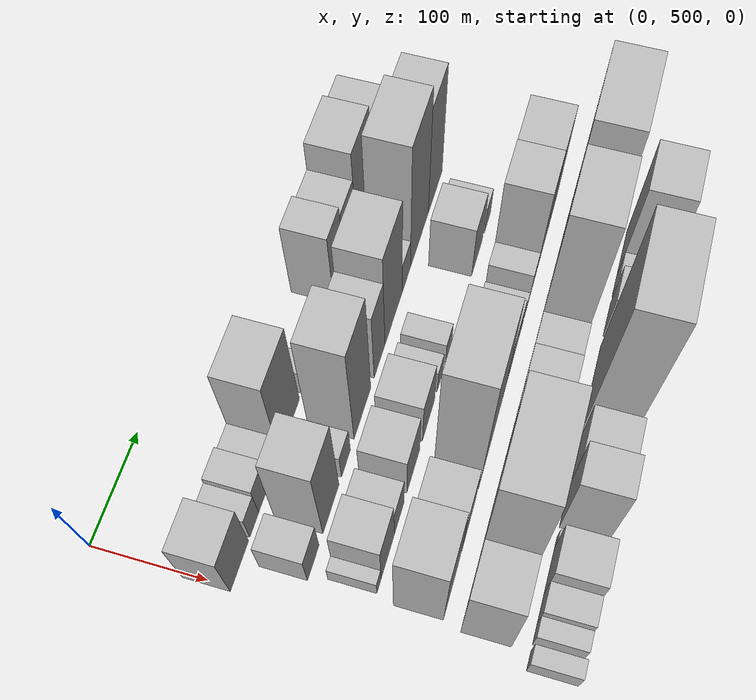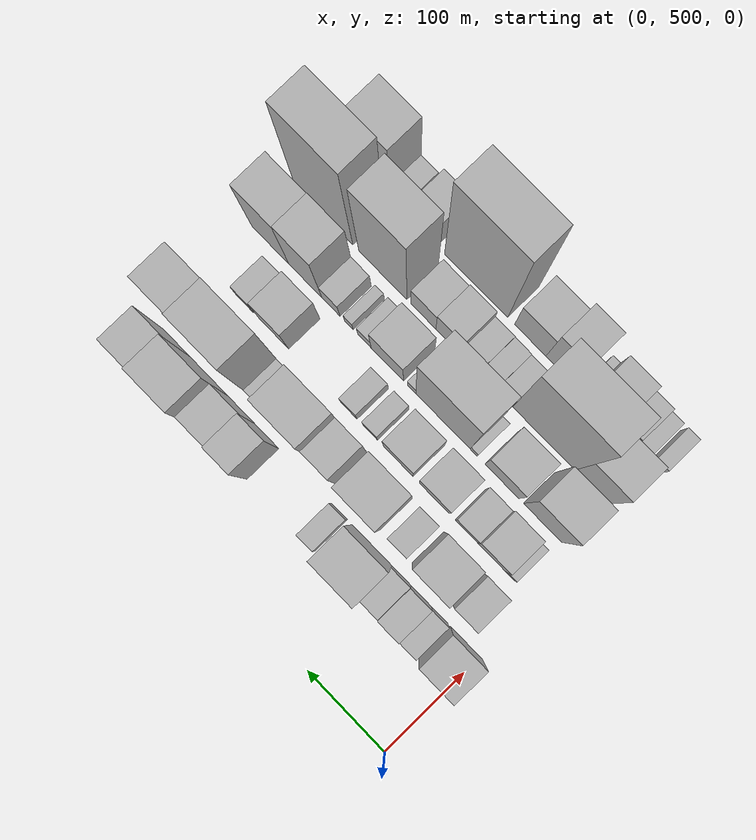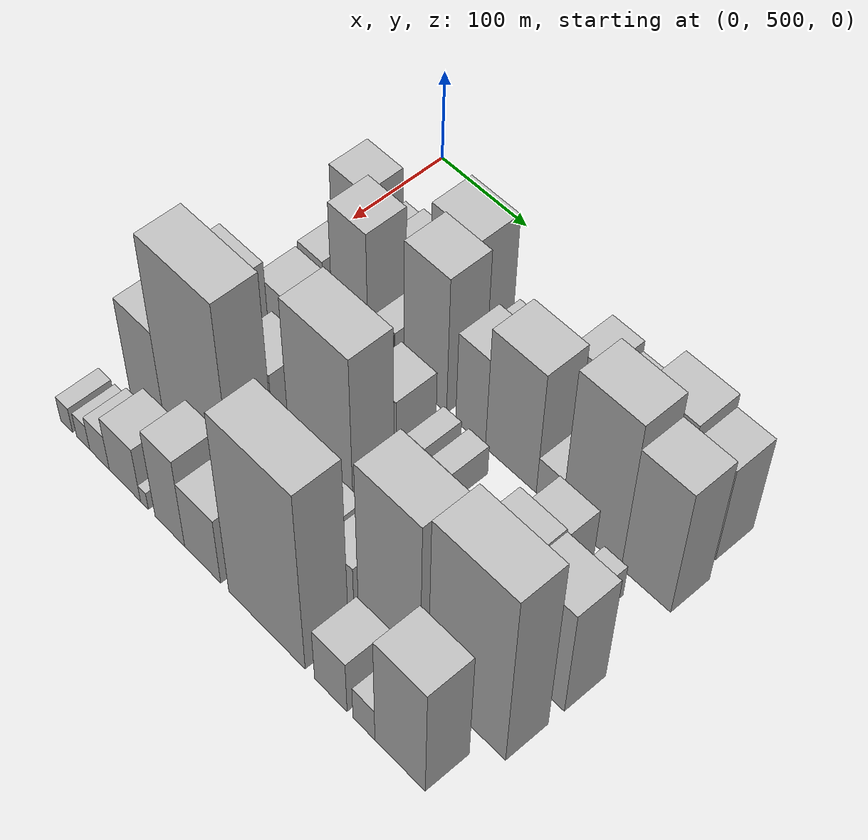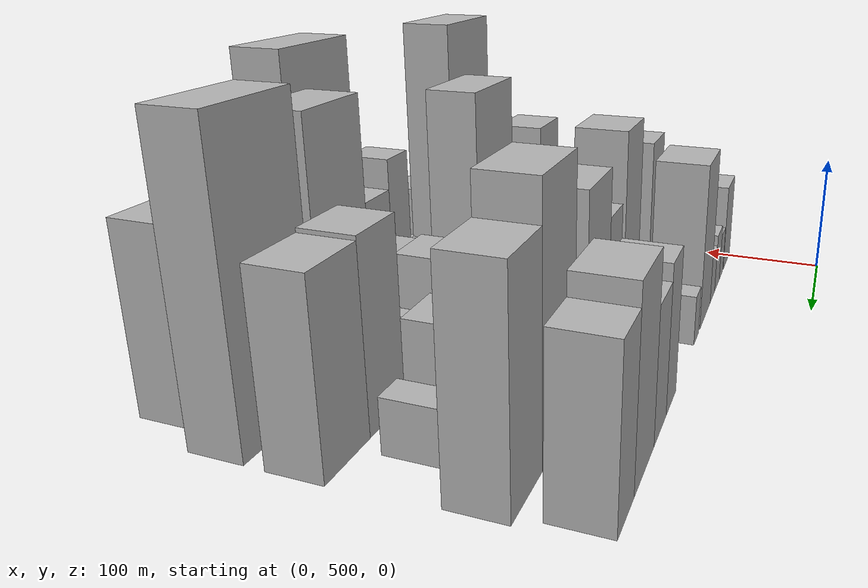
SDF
<sdf version="1.6">
 <world name="default">
  <model name="building_44">
   <static>1</static>
   <pose>100.0000 517.8508 0 0.000000 0.000000 0.000000</pose>
   <link name="link">
    <pose>0 0 39.00 0 0 0</pose>
    <collision name="collision"><geometry><box><size>40.0000 41.9341 78.0000</size></box></geometry></collision>
    <visual name="visual">
     <cast_shadows>0</cast_shadows>
     <geometry><box><size>40.0000 41.9341 78.0000</size></box></geometry>
     <material>
      <script>
       <uri>model://HANNAS_wall/materials/scripts</uri>
       <uri>model://HANNAS_wall/materials/textures</uri>
       <name>vrc/HANNAS_wall</name>
      </script>
     </material>
    </visual>
   </link>
  </model>
  <model name="building_45">
   <static>1</static>
   <pose>100.0000 552.3802 0 0.000000 0.000000 0.000000</pose>
   <link name="link">
    <pose>0 0 21.00 0 0 0</pose>
    <collision name="collision"><geometry><box><size>40.0000 21.1246 42.0000</size></box></geometry></collision>
    <visual name="visual">
     <cast_shadows>0</cast_shadows>
     <geometry><box><size>40.0000 21.1246 42.0000</size></box></geometry>
     <material>
      <script>
       <uri>model://HANNAS_wall/materials/scripts</uri>
       <uri>model://HANNAS_wall/materials/textures</uri>
       <name>vrc/HANNAS_wall</name>
      </script>
     </material>
    </visual>
   </link>
  </model>
  <model name="building_46">
   <static>1</static>
   <pose>100.0000 576.4382 0 0.000000 0.000000 0.000000</pose>
   <link name="link">
    <pose>0 0 25.50 0 0 0</pose>
    <collision name="collision"><geometry><box><size>40.0000 26.9914 51.0000</size></box></geometry></collision>
    <visual name="visual">
     <cast_shadows>0</cast_shadows>
     <geometry><box><size>40.0000 26.9914 51.0000</size></box></geometry>
     <material>
      <script>
       <uri>model://HANNAS_wall/materials/scripts</uri>
       <uri>model://HANNAS_wall/materials/textures</uri>
       <name>vrc/HANNAS_wall</name>
      </script>
     </material>
    </visual>
   </link>
  </model>
  <model name="building_47">
   <static>1</static>
   <pose>100.0000 602.1581 0 0.000000 0.000000 0.000000</pose>
   <link name="link">
    <pose>0 0 21.00 0 0 0</pose>
    <collision name="collision"><geometry><box><size>40.0000 24.4485 42.0000</size></box></geometry></collision>
    <visual name="visual">
     <cast_shadows>0</cast_shadows>
     <geometry><box><size>40.0000 24.4485 42.0000</size></box></geometry>
     <material>
      <script>
       <uri>model://HANNAS_wall/materials/scripts</uri>
       <uri>model://HANNAS_wall/materials/textures</uri>
       <name>vrc/HANNAS_wall</name>
      </script>
     </material>
    </visual>
   </link>
  </model>
  <model name="building_48">
   <static>1</static>
   <pose>100.0000 640.1710 0 0.000000 0.000000 0.000000</pose>
   <link name="link">
    <pose>0 0 66.00 0 0 0</pose>
    <collision name="collision"><geometry><box><size>40.0000 51.5771 132.0000</size></box></geometry></collision>
    <visual name="visual">
     <cast_shadows>0</cast_shadows>
     <geometry><box><size>40.0000 51.5771 132.0000</size></box></geometry>
     <material>
      <script>
       <uri>model://HANNAS_wall/materials/scripts</uri>
       <uri>model://HANNAS_wall/materials/textures</uri>
       <name>vrc/HANNAS_wall</name>
      </script>
     </material>
    </visual>
   </link>
  </model>
  <model name="building_49">
   <static>1</static>
   <pose>100.0000 682.2339 0 0.000000 0.000000 0.000000</pose>
   <link name="link">
    <pose>0 0 19.50 0 0 0</pose>
    <collision name="collision"><geometry><box><size>40.0000 20.5488 39.0000</size></box></geometry></collision>
    <visual name="visual">
     <cast_shadows>0</cast_shadows>
     <geometry><box><size>40.0000 20.5488 39.0000</size></box></geometry>
     <material>
      <script>
       <uri>model://HANNAS_wall/materials/scripts</uri>
       <uri>model://HANNAS_wall/materials/textures</uri>
       <name>vrc/HANNAS_wall</name>
      </script>
     </material>
    </visual>
   </link>
  </model>
  <model name="building_50">
   <static>1</static>
   <pose>100.0000 778.3598 0 0.000000 0.000000 0.000000</pose>
   <link name="link">
    <pose>0 0 52.50 0 0 0</pose>
    <collision name="collision"><geometry><box><size>40.0000 31.9010 105.0000</size></box></geometry></collision>
    <visual name="visual">
     <cast_shadows>0</cast_shadows>
     <geometry><box><size>40.0000 31.9010 105.0000</size></box></geometry>
     <material>
      <script>
       <uri>model://HANNAS_wall/materials/scripts</uri>
       <uri>model://HANNAS_wall/materials/textures</uri>
       <name>vrc/HANNAS_wall</name>
      </script>
     </material>
    </visual>
   </link>
  </model>
  <model name="building_51">
   <static>1</static>
   <pose>100.0000 812.2921 0 0.000000 0.000000 0.000000</pose>
   <link name="link">
    <pose>0 0 46.50 0 0 0</pose>
    <collision name="collision"><geometry><box><size>40.0000 35.9637 93.0000</size></box></geometry></collision>
    <visual name="visual">
     <cast_shadows>0</cast_shadows>
     <geometry><box><size>40.0000 35.9637 93.0000</size></box></geometry>
     <material>
      <script>
       <uri>model://HANNAS_wall/materials/scripts</uri>
       <uri>model://HANNAS_wall/materials/textures</uri>
       <name>vrc/HANNAS_wall</name>
      </script>
     </material>
    </visual>
   </link>
  </model>
  <model name="building_52">
   <static>1</static>
   <pose>100.0000 855.3692 0 0.000000 0.000000 0.000000</pose>
   <link name="link">
    <pose>0 0 64.50 0 0 0</pose>
    <collision name="collision"><geometry><box><size>40.0000 50.1904 129.0000</size></box></geometry></collision>
    <visual name="visual">
     <cast_shadows>0</cast_shadows>
     <geometry><box><size>40.0000 50.1904 129.0000</size></box></geometry>
     <material>
      <script>
       <uri>model://HANNAS_wall/materials/scripts</uri>
       <uri>model://HANNAS_wall/materials/textures</uri>
       <name>vrc/HANNAS_wall</name>
      </script>
     </material>
    </visual>
   </link>
  </model>
  <model name="building_53">
   <static>1</static>
   <pose>100.0000 898.5017 0 0.000000 0.000000 0.000000</pose>
   <link name="link">
    <pose>0 0 57.00 0 0 0</pose>
    <collision name="collision"><geometry><box><size>40.0000 36.0745 114.0000</size></box></geometry></collision>
    <visual name="visual">
     <cast_shadows>0</cast_shadows>
     <geometry><box><size>40.0000 36.0745 114.0000</size></box></geometry>
     <material>
      <script>
       <uri>model://HANNAS_wall/materials/scripts</uri>
       <uri>model://HANNAS_wall/materials/textures</uri>
       <name>vrc/HANNAS_wall</name>
      </script>
     </material>
    </visual>
   </link>
  </model>
  <model name="building_96">
   <static>1</static>
   <pose>155.0000 536.3667 0 0.000000 0.000000 0.000000</pose>
   <link name="link">
    <pose>0 0 25.50 0 0 0</pose>
    <collision name="collision"><geometry><box><size>40.0000 29.1340 51.0000</size></box></geometry></collision>
    <visual name="visual">
     <cast_shadows>0</cast_shadows>
     <geometry><box><size>40.0000 29.1340 51.0000</size></box></geometry>
     <material>
      <script>
       <uri>model://HANNAS_wall/materials/scripts</uri>
       <uri>model://HANNAS_wall/materials/textures</uri>
       <name>vrc/HANNAS_wall</name>
      </script>
     </material>
    </visual>
   </link>
  </model>
  <model name="building_97">
   <static>1</static>
   <pose>155.0000 582.0551 0 0.000000 0.000000 0.000000</pose>
   <link name="link">
    <pose>0 0 64.50 0 0 0</pose>
    <collision name="collision"><geometry><box><size>40.0000 42.2427 129.0000</size></box></geometry></collision>
    <visual name="visual">
     <cast_shadows>0</cast_shadows>
     <geometry><box><size>40.0000 42.2427 129.0000</size></box></geometry>
     <material>
      <script>
       <uri>model://HANNAS_wall/materials/scripts</uri>
       <uri>model://HANNAS_wall/materials/textures</uri>
       <name>vrc/HANNAS_wall</name>
      </script>
     </material>
    </visual>
   </link>
  </model>
  <model name="building_98">
   <static>1</static>
   <pose>155.0000 622.3955 0 0.000000 0.000000 0.000000</pose>
   <link name="link">
    <pose>0 0 21.00 0 0 0</pose>
    <collision name="collision"><geometry><box><size>40.0000 24.4379 42.0000</size></box></geometry></collision>
    <visual name="visual">
     <cast_shadows>0</cast_shadows>
     <geometry><box><size>40.0000 24.4379 42.0000</size></box></geometry>
     <material>
      <script>
       <uri>model://HANNAS_wall/materials/scripts</uri>
       <uri>model://HANNAS_wall/materials/textures</uri>
       <name>vrc/HANNAS_wall</name>
      </script>
     </material>
    </visual>
   </link>
  </model>
  <model name="building_99">
   <static>1</static>
   <pose>155.0000 668.6088 0 0.000000 0.000000 0.000000</pose>
   <link name="link">
    <pose>0 0 79.50 0 0 0</pose>
    <collision name="collision"><geometry><box><size>40.0000 47.9887 159.0000</size></box></geometry></collision>
    <visual name="visual">
     <cast_shadows>0</cast_shadows>
     <geometry><box><size>40.0000 47.9887 159.0000</size></box></geometry>
     <material>
      <script>
       <uri>model://HANNAS_wall/materials/scripts</uri>
       <uri>model://HANNAS_wall/materials/textures</uri>
       <name>vrc/HANNAS_wall</name>
      </script>
     </material>
    </visual>
   </link>
  </model>
  <model name="building_100">
   <static>1</static>
   <pose>155.0000 718.8504 0 0.000000 0.000000 0.000000</pose>
   <link name="link">
    <pose>0 0 54.00 0 0 0</pose>
    <collision name="collision"><geometry><box><size>40.0000 32.4945 108.0000</size></box></geometry></collision>
    <visual name="visual">
     <cast_shadows>0</cast_shadows>
     <geometry><box><size>40.0000 32.4945 108.0000</size></box></geometry>
     <material>
      <script>
       <uri>model://HANNAS_wall/materials/scripts</uri>
       <uri>model://HANNAS_wall/materials/textures</uri>
       <name>vrc/HANNAS_wall</name>
      </script>
     </material>
    </visual>
   </link>
  </model>
  <model name="building_101">
   <static>1</static>
   <pose>155.0000 762.1811 0 0.000000 0.000000 0.000000</pose>
   <link name="link">
    <pose>0 0 72.00 0 0 0</pose>
    <collision name="collision"><geometry><box><size>40.0000 54.1671 144.0000</size></box></geometry></collision>
    <visual name="visual">
     <cast_shadows>0</cast_shadows>
     <geometry><box><size>40.0000 54.1671 144.0000</size></box></geometry>
     <material>
      <script>
       <uri>model://HANNAS_wall/materials/scripts</uri>
       <uri>model://HANNAS_wall/materials/textures</uri>
       <name>vrc/HANNAS_wall</name>
      </script>
     </material>
    </visual>
   </link>
  </model>
  <model name="building_102">
   <static>1</static>
   <pose>155.0000 802.4595 0 0.000000 0.000000 0.000000</pose>
   <link name="link">
    <pose>0 0 22.50 0 0 0</pose>
    <collision name="collision"><geometry><box><size>40.0000 26.3896 45.0000</size></box></geometry></collision>
    <visual name="visual">
     <cast_shadows>0</cast_shadows>
     <geometry><box><size>40.0000 26.3896 45.0000</size></box></geometry>
     <material>
      <script>
       <uri>model://HANNAS_wall/materials/scripts</uri>
       <uri>model://HANNAS_wall/materials/textures</uri>
       <name>vrc/HANNAS_wall</name>
      </script>
     </material>
    </visual>
   </link>
  </model>
  <model name="building_103">
   <static>1</static>
   <pose>155.0000 845.8336 0 0.000000 0.000000 0.000000</pose>
   <link name="link">
    <pose>0 0 88.50 0 0 0</pose>
    <collision name="collision"><geometry><box><size>40.0000 60.3588 177.0000</size></box></geometry></collision>
    <visual name="visual">
     <cast_shadows>0</cast_shadows>
     <geometry><box><size>40.0000 60.3588 177.0000</size></box></geometry>
     <material>
      <script>
       <uri>model://HANNAS_wall/materials/scripts</uri>
       <uri>model://HANNAS_wall/materials/textures</uri>
       <name>vrc/HANNAS_wall</name>
      </script>
     </material>
    </visual>
   </link>
  </model>
  <model name="building_104">
   <static>1</static>
   <pose>155.0000 900.2681 0 0.000000 0.000000 0.000000</pose>
   <link name="link">
    <pose>0 0 75.00 0 0 0</pose>
    <collision name="collision"><geometry><box><size>40.0000 48.5101 150.0000</size></box></geometry></collision>
    <visual name="visual">
     <cast_shadows>0</cast_shadows>
     <geometry><box><size>40.0000 48.5101 150.0000</size></box></geometry>
     <material>
      <script>
       <uri>model://HANNAS_wall/materials/scripts</uri>
       <uri>model://HANNAS_wall/materials/textures</uri>
       <name>vrc/HANNAS_wall</name>
      </script>
     </material>
    </visual>
   </link>
  </model>
  <model name="building_148">
   <static>1</static>
   <pose>210.0000 533.1512 0 0.000000 0.000000 0.000000</pose>
   <link name="link">
    <pose>0 0 13.50 0 0 0</pose>
    <collision name="collision"><geometry><box><size>40.0000 11.9378 27.0000</size></box></geometry></collision>
    <visual name="visual">
     <cast_shadows>0</cast_shadows>
     <geometry><box><size>40.0000 11.9378 27.0000</size></box></geometry>
     <material>
      <script>
       <uri>model://HANNAS_wall/materials/scripts</uri>
       <uri>model://HANNAS_wall/materials/textures</uri>
       <name>vrc/HANNAS_wall</name>
      </script>
     </material>
    </visual>
   </link>
  </model>
  <model name="building_149">
   <static>1</static>
   <pose>210.0000 557.2958 0 0.000000 0.000000 0.000000</pose>
   <link name="link">
    <pose>0 0 36.00 0 0 0</pose>
    <collision name="collision"><geometry><box><size>40.0000 36.3515 72.0000</size></box></geometry></collision>
    <visual name="visual">
     <cast_shadows>0</cast_shadows>
     <geometry><box><size>40.0000 36.3515 72.0000</size></box></geometry>
     <material>
      <script>
       <uri>model://HANNAS_wall/materials/scripts</uri>
       <uri>model://HANNAS_wall/materials/textures</uri>
       <name>vrc/HANNAS_wall</name>
      </script>
     </material>
    </visual>
   </link>
  </model>
  <model name="building_150">
   <static>1</static>
   <pose>210.0000 589.7022 0 0.000000 0.000000 0.000000</pose>
   <link name="link">
    <pose>0 0 25.50 0 0 0</pose>
    <collision name="collision"><geometry><box><size>40.0000 28.4612 51.0000</size></box></geometry></collision>
    <visual name="visual">
     <cast_shadows>0</cast_shadows>
     <geometry><box><size>40.0000 28.4612 51.0000</size></box></geometry>
     <material>
      <script>
       <uri>model://HANNAS_wall/materials/scripts</uri>
       <uri>model://HANNAS_wall/materials/textures</uri>
       <name>vrc/HANNAS_wall</name>
      </script>
     </material>
    </visual>
   </link>
  </model>
  <model name="building_151">
   <static>1</static>
   <pose>210.0000 631.2632 0 0.000000 0.000000 0.000000</pose>
   <link name="link">
    <pose>0 0 34.50 0 0 0</pose>
    <collision name="collision"><geometry><box><size>40.0000 38.6607 69.0000</size></box></geometry></collision>
    <visual name="visual">
     <cast_shadows>0</cast_shadows>
     <geometry><box><size>40.0000 38.6607 69.0000</size></box></geometry>
     <material>
      <script>
       <uri>model://HANNAS_wall/materials/scripts</uri>
       <uri>model://HANNAS_wall/materials/textures</uri>
       <name>vrc/HANNAS_wall</name>
      </script>
     </material>
    </visual>
   </link>
  </model>
  <model name="building_152">
   <static>1</static>
   <pose>210.0000 677.7914 0 0.000000 0.000000 0.000000</pose>
   <link name="link">
    <pose>0 0 34.50 0 0 0</pose>
    <collision name="collision"><geometry><box><size>40.0000 38.3959 69.0000</size></box></geometry></collision>
    <visual name="visual">
     <cast_shadows>0</cast_shadows>
     <geometry><box><size>40.0000 38.3959 69.0000</size></box></geometry>
     <material>
      <script>
       <uri>model://HANNAS_wall/materials/scripts</uri>
       <uri>model://HANNAS_wall/materials/textures</uri>
       <name>vrc/HANNAS_wall</name>
      </script>
     </material>
    </visual>
   </link>
  </model>
  <model name="building_153">
   <static>1</static>
   <pose>210.0000 714.4570 0 0.000000 0.000000 0.000000</pose>
   <link name="link">
    <pose>0 0 18.00 0 0 0</pose>
    <collision name="collision"><geometry><box><size>40.0000 18.9353 36.0000</size></box></geometry></collision>
    <visual name="visual">
     <cast_shadows>0</cast_shadows>
     <geometry><box><size>40.0000 18.9353 36.0000</size></box></geometry>
     <material>
      <script>
       <uri>model://HANNAS_wall/materials/scripts</uri>
       <uri>model://HANNAS_wall/materials/textures</uri>
       <name>vrc/HANNAS_wall</name>
      </script>
     </material>
    </visual>
   </link>
  </model>
  <model name="building_154">
   <static>1</static>
   <pose>210.0000 742.6307 0 0.000000 0.000000 0.000000</pose>
   <link name="link">
    <pose>0 0 18.00 0 0 0</pose>
    <collision name="collision"><geometry><box><size>40.0000 21.4121 36.0000</size></box></geometry></collision>
    <visual name="visual">
     <cast_shadows>0</cast_shadows>
     <geometry><box><size>40.0000 21.4121 36.0000</size></box></geometry>
     <material>
      <script>
       <uri>model://HANNAS_wall/materials/scripts</uri>
       <uri>model://HANNAS_wall/materials/textures</uri>
       <name>vrc/HANNAS_wall</name>
      </script>
     </material>
    </visual>
   </link>
  </model>
  <model name="building_155">
   <static>1</static>
   <pose>210.0000 842.0635 0 0.000000 0.000000 0.000000</pose>
   <link name="link">
    <pose>0 0 37.50 0 0 0</pose>
    <collision name="collision"><geometry><box><size>40.0000 39.1512 75.0000</size></box></geometry></collision>
    <visual name="visual">
     <cast_shadows>0</cast_shadows>
     <geometry><box><size>40.0000 39.1512 75.0000</size></box></geometry>
     <material>
      <script>
       <uri>model://HANNAS_wall/materials/scripts</uri>
       <uri>model://HANNAS_wall/materials/textures</uri>
       <name>vrc/HANNAS_wall</name>
      </script>
     </material>
    </visual>
   </link>
  </model>
  <model name="building_156">
   <static>1</static>
   <pose>210.0000 881.0233 0 0.000000 0.000000 0.000000</pose>
   <link name="link">
    <pose>0 0 19.50 0 0 0</pose>
    <collision name="collision"><geometry><box><size>40.0000 22.7685 39.0000</size></box></geometry></collision>
    <visual name="visual">
     <cast_shadows>0</cast_shadows>
     <geometry><box><size>40.0000 22.7685 39.0000</size></box></geometry>
     <material>
      <script>
       <uri>model://HANNAS_wall/materials/scripts</uri>
       <uri>model://HANNAS_wall/materials/textures</uri>
       <name>vrc/HANNAS_wall</name>
      </script>
     </material>
    </visual>
   </link>
  </model>
  <model name="building_195">
   <static>1</static>
   <pose>265.0000 546.4514 0 0.000000 0.000000 0.000000</pose>
   <link name="link">
    <pose>0 0 63.00 0 0 0</pose>
    <collision name="collision"><geometry><box><size>40.0000 49.1595 126.0000</size></box></geometry></collision>
    <visual name="visual">
     <cast_shadows>0</cast_shadows>
     <geometry><box><size>40.0000 49.1595 126.0000</size></box></geometry>
     <material>
      <script>
       <uri>model://HANNAS_wall/materials/scripts</uri>
       <uri>model://HANNAS_wall/materials/textures</uri>
       <name>vrc/HANNAS_wall</name>
      </script>
     </material>
    </visual>
   </link>
  </model>
  <model name="building_196">
   <static>1</static>
   <pose>265.0000 599.0472 0 0.000000 0.000000 0.000000</pose>
   <link name="link">
    <pose>0 0 37.50 0 0 0</pose>
    <collision name="collision"><geometry><box><size>40.0000 44.0322 75.0000</size></box></geometry></collision>
    <visual name="visual">
     <cast_shadows>0</cast_shadows>
     <geometry><box><size>40.0000 44.0322 75.0000</size></box></geometry>
     <material>
      <script>
       <uri>model://HANNAS_wall/materials/scripts</uri>
       <uri>model://HANNAS_wall/materials/textures</uri>
       <name>vrc/HANNAS_wall</name>
      </script>
     </material>
    </visual>
   </link>
  </model>
  <model name="building_197">
   <static>1</static>
   <pose>265.0000 635.6256 0 0.000000 0.000000 0.000000</pose>
   <link name="link">
    <pose>0 0 10.50 0 0 0</pose>
    <collision name="collision"><geometry><box><size>40.0000 9.1247 21.0000</size></box></geometry></collision>
    <visual name="visual">
     <cast_shadows>0</cast_shadows>
     <geometry><box><size>40.0000 9.1247 21.0000</size></box></geometry>
     <material>
      <script>
       <uri>model://HANNAS_wall/materials/scripts</uri>
       <uri>model://HANNAS_wall/materials/textures</uri>
       <name>vrc/HANNAS_wall</name>
      </script>
     </material>
    </visual>
   </link>
  </model>
  <model name="building_198">
   <static>1</static>
   <pose>265.0000 675.7087 0 0.000000 0.000000 0.000000</pose>
   <link name="link">
    <pose>0 0 91.50 0 0 0</pose>
    <collision name="collision"><geometry><box><size>40.0000 71.0414 183.0000</size></box></geometry></collision>
    <visual name="visual">
     <cast_shadows>0</cast_shadows>
     <geometry><box><size>40.0000 71.0414 183.0000</size></box></geometry>
     <material>
      <script>
       <uri>model://HANNAS_wall/materials/scripts</uri>
       <uri>model://HANNAS_wall/materials/textures</uri>
       <name>vrc/HANNAS_wall</name>
      </script>
     </material>
    </visual>
   </link>
  </model>
  <model name="building_199">
   <static>1</static>
   <pose>265.0000 716.8996 0 0.000000 0.000000 0.000000</pose>
   <link name="link">
    <pose>0 0 12.00 0 0 0</pose>
    <collision name="collision"><geometry><box><size>40.0000 11.3404 24.0000</size></box></geometry></collision>
    <visual name="visual">
     <cast_shadows>0</cast_shadows>
     <geometry><box><size>40.0000 11.3404 24.0000</size></box></geometry>
     <material>
      <script>
       <uri>model://HANNAS_wall/materials/scripts</uri>
       <uri>model://HANNAS_wall/materials/textures</uri>
       <name>vrc/HANNAS_wall</name>
      </script>
     </material>
    </visual>
   </link>
  </model>
  <model name="building_200">
   <static>1</static>
   <pose>265.0000 748.8118 0 0.000000 0.000000 0.000000</pose>
   <link name="link">
    <pose>0 0 37.50 0 0 0</pose>
    <collision name="collision"><geometry><box><size>40.0000 42.4840 75.0000</size></box></geometry></collision>
    <visual name="visual">
     <cast_shadows>0</cast_shadows>
     <geometry><box><size>40.0000 42.4840 75.0000</size></box></geometry>
     <material>
      <script>
       <uri>model://HANNAS_wall/materials/scripts</uri>
       <uri>model://HANNAS_wall/materials/textures</uri>
       <name>vrc/HANNAS_wall</name>
      </script>
     </material>
    </visual>
   </link>
  </model>
  <model name="building_201">
   <static>1</static>
   <pose>265.0000 779.0419 0 0.000000 0.000000 0.000000</pose>
   <link name="link">
    <pose>0 0 16.50 0 0 0</pose>
    <collision name="collision"><geometry><box><size>40.0000 17.9763 33.0000</size></box></geometry></collision>
    <visual name="visual">
     <cast_shadows>0</cast_shadows>
     <geometry><box><size>40.0000 17.9763 33.0000</size></box></geometry>
     <material>
      <script>
       <uri>model://HANNAS_wall/materials/scripts</uri>
       <uri>model://HANNAS_wall/materials/textures</uri>
       <name>vrc/HANNAS_wall</name>
      </script>
     </material>
    </visual>
   </link>
  </model>
  <model name="building_202">
   <static>1</static>
   <pose>265.0000 799.6860 0 0.000000 0.000000 0.000000</pose>
   <link name="link">
    <pose>0 0 13.50 0 0 0</pose>
    <collision name="collision"><geometry><box><size>40.0000 11.3119 27.0000</size></box></geometry></collision>
    <visual name="visual">
     <cast_shadows>0</cast_shadows>
     <geometry><box><size>40.0000 11.3119 27.0000</size></box></geometry>
     <material>
      <script>
       <uri>model://HANNAS_wall/materials/scripts</uri>
       <uri>model://HANNAS_wall/materials/textures</uri>
       <name>vrc/HANNAS_wall</name>
      </script>
     </material>
    </visual>
   </link>
  </model>
  <model name="building_203">
   <static>1</static>
   <pose>265.0000 823.3783 0 0.000000 0.000000 0.000000</pose>
   <link name="link">
    <pose>0 0 22.50 0 0 0</pose>
    <collision name="collision"><geometry><box><size>40.0000 24.0727 45.0000</size></box></geometry></collision>
    <visual name="visual">
     <cast_shadows>0</cast_shadows>
     <geometry><box><size>40.0000 24.0727 45.0000</size></box></geometry>
     <material>
      <script>
       <uri>model://HANNAS_wall/materials/scripts</uri>
       <uri>model://HANNAS_wall/materials/textures</uri>
       <name>vrc/HANNAS_wall</name>
      </script>
     </material>
    </visual>
   </link>
  </model>
  <model name="building_204">
   <static>1</static>
   <pose>265.0000 857.5323 0 0.000000 0.000000 0.000000</pose>
   <link name="link">
    <pose>0 0 66.00 0 0 0</pose>
    <collision name="collision"><geometry><box><size>40.0000 44.2353 132.0000</size></box></geometry></collision>
    <visual name="visual">
     <cast_shadows>0</cast_shadows>
     <geometry><box><size>40.0000 44.2353 132.0000</size></box></geometry>
     <material>
      <script>
       <uri>model://HANNAS_wall/materials/scripts</uri>
       <uri>model://HANNAS_wall/materials/textures</uri>
       <name>vrc/HANNAS_wall</name>
      </script>
     </material>
    </visual>
   </link>
  </model>
  <model name="building_205">
   <static>1</static>
   <pose>265.0000 904.3581 0 0.000000 0.000000 0.000000</pose>
   <link name="link">
    <pose>0 0 64.50 0 0 0</pose>
    <collision name="collision"><geometry><box><size>40.0000 49.4163 129.0000</size></box></geometry></collision>
    <visual name="visual">
     <cast_shadows>0</cast_shadows>
     <geometry><box><size>40.0000 49.4163 129.0000</size></box></geometry>
     <material>
      <script>
       <uri>model://HANNAS_wall/materials/scripts</uri>
       <uri>model://HANNAS_wall/materials/textures</uri>
       <name>vrc/HANNAS_wall</name>
      </script>
     </material>
    </visual>
   </link>
  </model>
  <model name="building_243">
   <static>1</static>
   <pose>320.0000 538.2460 0 0.000000 0.000000 0.000000</pose>
   <link name="link">
    <pose>0 0 57.00 0 0 0</pose>
    <collision name="collision"><geometry><box><size>40.0000 43.0873 114.0000</size></box></geometry></collision>
    <visual name="visual">
     <cast_shadows>0</cast_shadows>
     <geometry><box><size>40.0000 43.0873 114.0000</size></box></geometry>
     <material>
      <script>
       <uri>model://HANNAS_wall/materials/scripts</uri>
       <uri>model://HANNAS_wall/materials/textures</uri>
       <name>vrc/HANNAS_wall</name>
      </script>
     </material>
    </visual>
   </link>
  </model>
  <model name="building_244">
   <static>1</static>
   <pose>320.0000 600.0550 0 0.000000 0.000000 0.000000</pose>
   <link name="link">
    <pose>0 0 111.00 0 0 0</pose>
    <collision name="collision"><geometry><box><size>40.0000 80.5306 222.0000</size></box></geometry></collision>
    <visual name="visual">
     <cast_shadows>0</cast_shadows>
     <geometry><box><size>40.0000 80.5306 222.0000</size></box></geometry>
     <material>
      <script>
       <uri>model://HANNAS_wall/materials/scripts</uri>
       <uri>model://HANNAS_wall/materials/textures</uri>
       <name>vrc/HANNAS_wall</name>
      </script>
     </material>
    </visual>
   </link>
  </model>
  <model name="building_245">
   <static>1</static>
   <pose>320.0000 650.8749 0 0.000000 0.000000 0.000000</pose>
   <link name="link">
    <pose>0 0 18.00 0 0 0</pose>
    <collision name="collision"><geometry><box><size>40.0000 21.1092 36.0000</size></box></geometry></collision>
    <visual name="visual">
     <cast_shadows>0</cast_shadows>
     <geometry><box><size>40.0000 21.1092 36.0000</size></box></geometry>
     <material>
      <script>
       <uri>model://HANNAS_wall/materials/scripts</uri>
       <uri>model://HANNAS_wall/materials/textures</uri>
       <name>vrc/HANNAS_wall</name>
      </script>
     </material>
    </visual>
   </link>
  </model>
  <model name="building_246">
   <static>1</static>
   <pose>320.0000 672.1015 0 0.000000 0.000000 0.000000</pose>
   <link name="link">
    <pose>0 0 19.50 0 0 0</pose>
    <collision name="collision"><geometry><box><size>40.0000 21.3441 39.0000</size></box></geometry></collision>
    <visual name="visual">
     <cast_shadows>0</cast_shadows>
     <geometry><box><size>40.0000 21.3441 39.0000</size></box></geometry>
     <material>
      <script>
       <uri>model://HANNAS_wall/materials/scripts</uri>
       <uri>model://HANNAS_wall/materials/textures</uri>
       <name>vrc/HANNAS_wall</name>
      </script>
     </material>
    </visual>
   </link>
  </model>
  <model name="building_247">
   <static>1</static>
   <pose>320.0000 695.3386 0 0.000000 0.000000 0.000000</pose>
   <link name="link">
    <pose>0 0 21.00 0 0 0</pose>
    <collision name="collision"><geometry><box><size>40.0000 25.1301 42.0000</size></box></geometry></collision>
    <visual name="visual">
     <cast_shadows>0</cast_shadows>
     <geometry><box><size>40.0000 25.1301 42.0000</size></box></geometry>
     <material>
      <script>
       <uri>model://HANNAS_wall/materials/scripts</uri>
       <uri>model://HANNAS_wall/materials/textures</uri>
       <name>vrc/HANNAS_wall</name>
      </script>
     </material>
    </visual>
   </link>
  </model>
  <model name="building_248">
   <static>1</static>
   <pose>320.0000 724.6614 0 0.000000 0.000000 0.000000</pose>
   <link name="link">
    <pose>0 0 31.50 0 0 0</pose>
    <collision name="collision"><geometry><box><size>40.0000 33.5154 63.0000</size></box></geometry></collision>
    <visual name="visual">
     <cast_shadows>0</cast_shadows>
     <geometry><box><size>40.0000 33.5154 63.0000</size></box></geometry>
     <material>
      <script>
       <uri>model://HANNAS_wall/materials/scripts</uri>
       <uri>model://HANNAS_wall/materials/textures</uri>
       <name>vrc/HANNAS_wall</name>
      </script>
     </material>
    </visual>
   </link>
  </model>
  <model name="building_249">
   <static>1</static>
   <pose>320.0000 757.9853 0 0.000000 0.000000 0.000000</pose>
   <link name="link">
    <pose>0 0 28.50 0 0 0</pose>
    <collision name="collision"><geometry><box><size>40.0000 33.1324 57.0000</size></box></geometry></collision>
    <visual name="visual">
     <cast_shadows>0</cast_shadows>
     <geometry><box><size>40.0000 33.1324 57.0000</size></box></geometry>
     <material>
      <script>
       <uri>model://HANNAS_wall/materials/scripts</uri>
       <uri>model://HANNAS_wall/materials/textures</uri>
       <name>vrc/HANNAS_wall</name>
      </script>
     </material>
    </visual>
   </link>
  </model>
  <model name="building_250">
   <static>1</static>
   <pose>320.0000 811.5292 0 0.000000 0.000000 0.000000</pose>
   <link name="link">
    <pose>0 0 96.00 0 0 0</pose>
    <collision name="collision"><geometry><box><size>40.0000 63.9555 192.0000</size></box></geometry></collision>
    <visual name="visual">
     <cast_shadows>0</cast_shadows>
     <geometry><box><size>40.0000 63.9555 192.0000</size></box></geometry>
     <material>
      <script>
       <uri>model://HANNAS_wall/materials/scripts</uri>
       <uri>model://HANNAS_wall/materials/textures</uri>
       <name>vrc/HANNAS_wall</name>
      </script>
     </material>
    </visual>
   </link>
  </model>
  <model name="building_251">
   <static>1</static>
   <pose>320.0000 890.0179 0 0.000000 0.000000 0.000000</pose>
   <link name="link">
    <pose>0 0 105.00 0 0 0</pose>
    <collision name="collision"><geometry><box><size>40.0000 77.0219 210.0000</size></box></geometry></collision>
    <visual name="visual">
     <cast_shadows>0</cast_shadows>
     <geometry><box><size>40.0000 77.0219 210.0000</size></box></geometry>
     <material>
      <script>
       <uri>model://HANNAS_wall/materials/scripts</uri>
       <uri>model://HANNAS_wall/materials/textures</uri>
       <name>vrc/HANNAS_wall</name>
      </script>
     </material>
    </visual>
   </link>
  </model>
  <model name="building_286">
   <static>1</static>
   <pose>375.0000 510.2775 0 0.000000 0.000000 0.000000</pose>
   <link name="link">
    <pose>0 0 15.00 0 0 0</pose>
    <collision name="collision"><geometry><box><size>40.0000 15.1735 30.0000</size></box></geometry></collision>
    <visual name="visual">
     <cast_shadows>0</cast_shadows>
     <geometry><box><size>40.0000 15.1735 30.0000</size></box></geometry>
     <material>
      <script>
       <uri>model://HANNAS_wall/materials/scripts</uri>
       <uri>model://HANNAS_wall/materials/textures</uri>
       <name>vrc/HANNAS_wall</name>
      </script>
     </material>
    </visual>
   </link>
  </model>
  <model name="building_287">
   <static>1</static>
   <pose>375.0000 531.0418 0 0.000000 0.000000 0.000000</pose>
   <link name="link">
    <pose>0 0 15.00 0 0 0</pose>
    <collision name="collision"><geometry><box><size>40.0000 16.3552 30.0000</size></box></geometry></collision>
    <visual name="visual">
     <cast_shadows>0</cast_shadows>
     <geometry><box><size>40.0000 16.3552 30.0000</size></box></geometry>
     <material>
      <script>
       <uri>model://HANNAS_wall/materials/scripts</uri>
       <uri>model://HANNAS_wall/materials/textures</uri>
       <name>vrc/HANNAS_wall</name>
      </script>
     </material>
    </visual>
   </link>
  </model>
  <model name="building_288">
   <static>1</static>
   <pose>375.0000 551.2387 0 0.000000 0.000000 0.000000</pose>
   <link name="link">
    <pose>0 0 21.00 0 0 0</pose>
    <collision name="collision"><geometry><box><size>40.0000 24.0386 42.0000</size></box></geometry></collision>
    <visual name="visual">
     <cast_shadows>0</cast_shadows>
     <geometry><box><size>40.0000 24.0386 42.0000</size></box></geometry>
     <material>
      <script>
       <uri>model://HANNAS_wall/materials/scripts</uri>
       <uri>model://HANNAS_wall/materials/textures</uri>
       <name>vrc/HANNAS_wall</name>
      </script>
     </material>
    </visual>
   </link>
  </model>
  <model name="building_289">
   <static>1</static>
   <pose>375.0000 582.0007 0 0.000000 0.000000 0.000000</pose>
   <link name="link">
    <pose>0 0 33.00 0 0 0</pose>
    <collision name="collision"><geometry><box><size>40.0000 37.4855 66.0000</size></box></geometry></collision>
    <visual name="visual">
     <cast_shadows>0</cast_shadows>
     <geometry><box><size>40.0000 37.4855 66.0000</size></box></geometry>
     <material>
      <script>
       <uri>model://HANNAS_wall/materials/scripts</uri>
       <uri>model://HANNAS_wall/materials/textures</uri>
       <name>vrc/HANNAS_wall</name>
      </script>
     </material>
    </visual>
   </link>
  </model>
  <model name="building_290">
   <static>1</static>
   <pose>375.0000 605.4223 0 0.000000 0.000000 0.000000</pose>
   <link name="link">
    <pose>0 0 10.50 0 0 0</pose>
    <collision name="collision"><geometry><box><size>40.0000 9.3578 21.0000</size></box></geometry></collision>
    <visual name="visual">
     <cast_shadows>0</cast_shadows>
     <geometry><box><size>40.0000 9.3578 21.0000</size></box></geometry>
     <material>
      <script>
       <uri>model://HANNAS_wall/materials/scripts</uri>
       <uri>model://HANNAS_wall/materials/textures</uri>
       <name>vrc/HANNAS_wall</name>
      </script>
     </material>
    </visual>
   </link>
  </model>
  <model name="building_291">
   <static>1</static>
   <pose>375.0000 635.3418 0 0.000000 0.000000 0.000000</pose>
   <link name="link">
    <pose>0 0 54.00 0 0 0</pose>
    <collision name="collision"><geometry><box><size>40.0000 34.4811 108.0000</size></box></geometry></collision>
    <visual name="visual">
     <cast_shadows>0</cast_shadows>
     <geometry><box><size>40.0000 34.4811 108.0000</size></box></geometry>
     <material>
      <script>
       <uri>model://HANNAS_wall/materials/scripts</uri>
       <uri>model://HANNAS_wall/materials/textures</uri>
       <name>vrc/HANNAS_wall</name>
      </script>
     </material>
    </visual>
   </link>
  </model>
  <model name="building_292">
   <static>1</static>
   <pose>375.0000 673.1517 0 0.000000 0.000000 0.000000</pose>
   <link name="link">
    <pose>0 0 40.50 0 0 0</pose>
    <collision name="collision"><geometry><box><size>40.0000 41.1387 81.0000</size></box></geometry></collision>
    <visual name="visual">
     <cast_shadows>0</cast_shadows>
     <geometry><box><size>40.0000 41.1387 81.0000</size></box></geometry>
     <material>
      <script>
       <uri>model://HANNAS_wall/materials/scripts</uri>
       <uri>model://HANNAS_wall/materials/textures</uri>
       <name>vrc/HANNAS_wall</name>
      </script>
     </material>
    </visual>
   </link>
  </model>
  <model name="building_293">
   <static>1</static>
   <pose>375.0000 744.4286 0 0.000000 0.000000 0.000000</pose>
   <link name="link">
    <pose>0 0 109.50 0 0 0</pose>
    <collision name="collision"><geometry><box><size>40.0000 83.4151 219.0000</size></box></geometry></collision>
    <visual name="visual">
     <cast_shadows>0</cast_shadows>
     <geometry><box><size>40.0000 83.4151 219.0000</size></box></geometry>
     <material>
      <script>
       <uri>model://HANNAS_wall/materials/scripts</uri>
       <uri>model://HANNAS_wall/materials/textures</uri>
       <name>vrc/HANNAS_wall</name>
      </script>
     </material>
    </visual>
   </link>
  </model>
  <model name="building_294">
   <static>1</static>
   <pose>375.0000 813.1047 0 0.000000 0.000000 0.000000</pose>
   <link name="link">
    <pose>0 0 33.00 0 0 0</pose>
    <collision name="collision"><geometry><box><size>40.0000 33.9372 66.0000</size></box></geometry></collision>
    <visual name="visual">
     <cast_shadows>0</cast_shadows>
     <geometry><box><size>40.0000 33.9372 66.0000</size></box></geometry>
     <material>
      <script>
       <uri>model://HANNAS_wall/materials/scripts</uri>
       <uri>model://HANNAS_wall/materials/textures</uri>
       <name>vrc/HANNAS_wall</name>
      </script>
     </material>
    </visual>
   </link>
  </model>
  <model name="building_295">
   <static>1</static>
   <pose>375.0000 847.2965 0 0.000000 0.000000 0.000000</pose>
   <link name="link">
    <pose>0 0 21.00 0 0 0</pose>
    <collision name="collision"><geometry><box><size>40.0000 22.4466 42.0000</size></box></geometry></collision>
    <visual name="visual">
     <cast_shadows>0</cast_shadows>
     <geometry><box><size>40.0000 22.4466 42.0000</size></box></geometry>
     <material>
      <script>
       <uri>model://HANNAS_wall/materials/scripts</uri>
       <uri>model://HANNAS_wall/materials/textures</uri>
       <name>vrc/HANNAS_wall</name>
      </script>
     </material>
    </visual>
   </link>
  </model>
  <model name="building_296">
   <static>1</static>
   <pose>375.0000 883.6901 0 0.000000 0.000000 0.000000</pose>
   <link name="link">
    <pose>0 0 67.50 0 0 0</pose>
    <collision name="collision"><geometry><box><size>40.0000 50.3407 135.0000</size></box></geometry></collision>
    <visual name="visual">
     <cast_shadows>0</cast_shadows>
     <geometry><box><size>40.0000 50.3407 135.0000</size></box></geometry>
     <material>
      <script>
       <uri>model://HANNAS_wall/materials/scripts</uri>
       <uri>model://HANNAS_wall/materials/textures</uri>
       <name>vrc/HANNAS_wall</name>
      </script>
     </material>
    </visual>
   </link>
  </model>
 </world>
</sdf>
